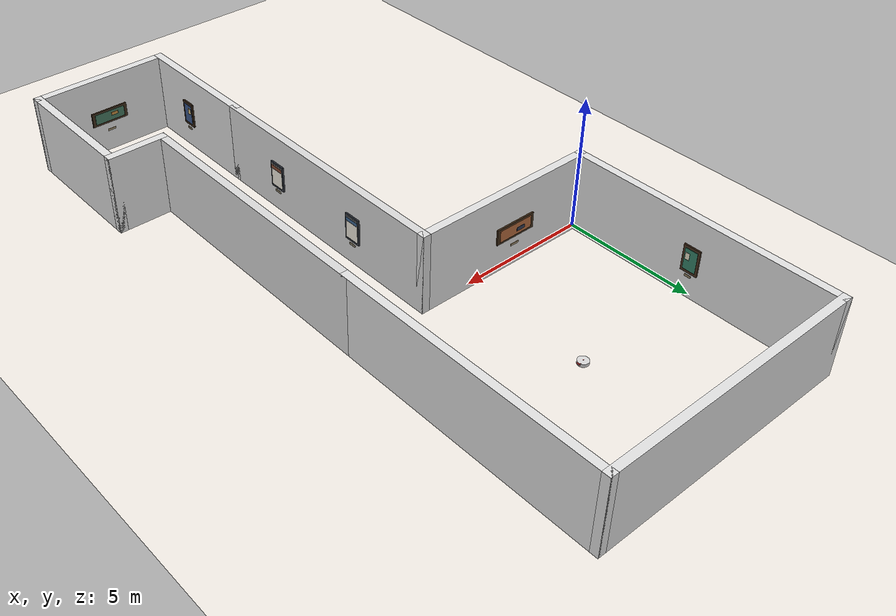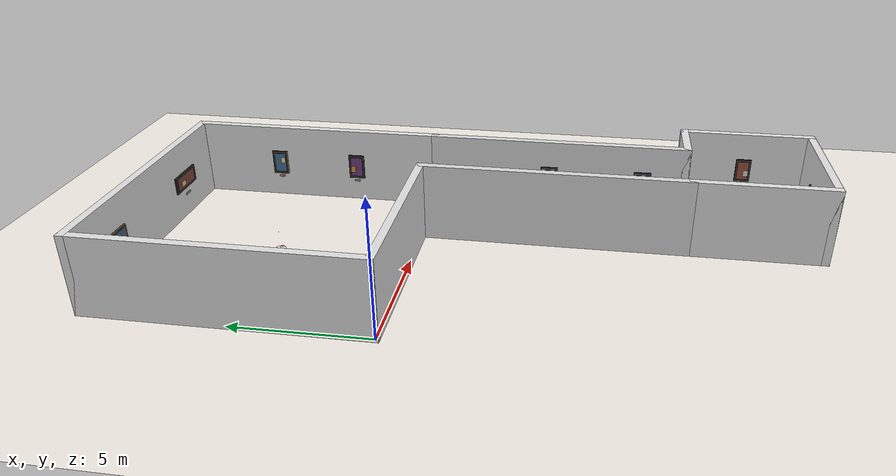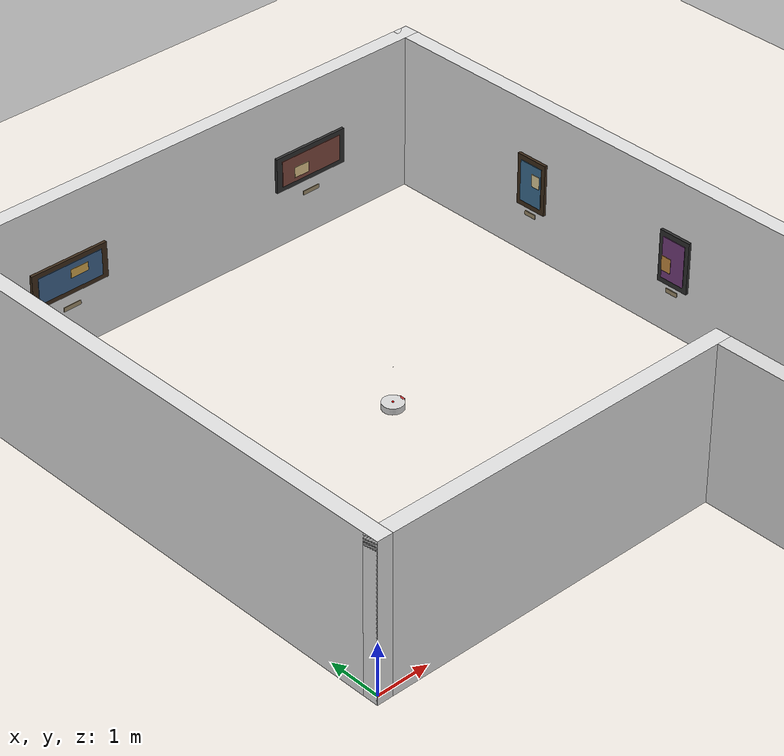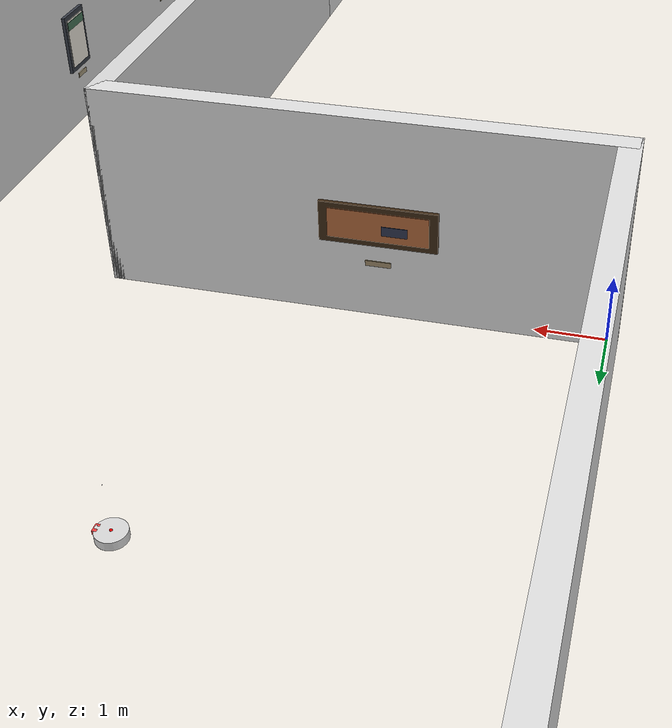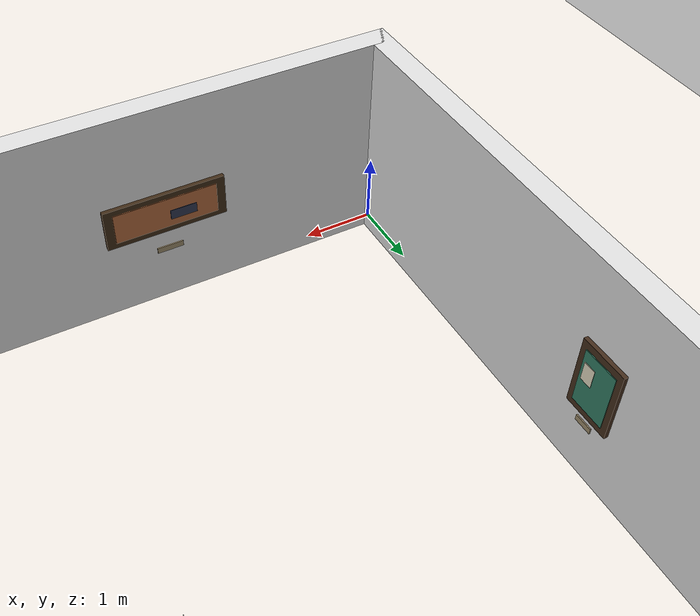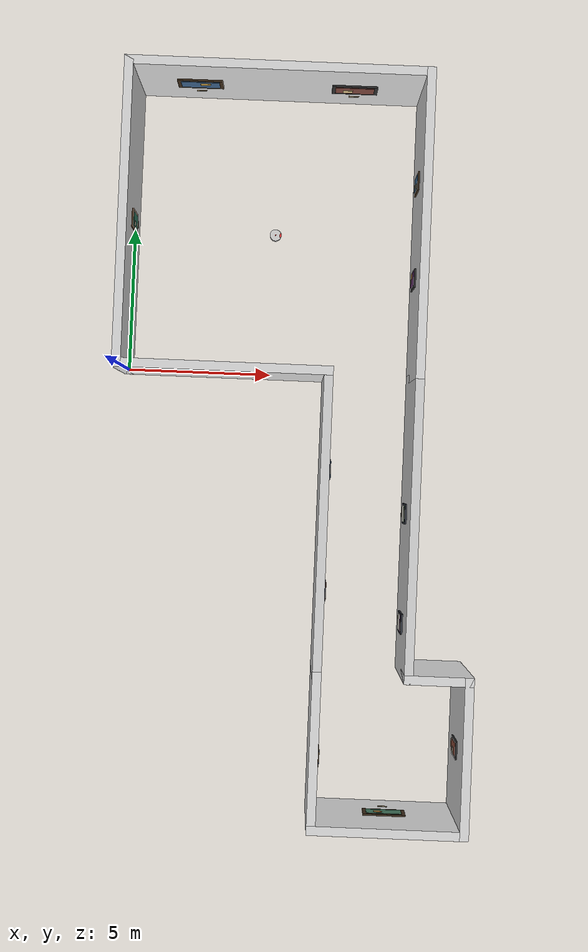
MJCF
<mujoco model="museum_shell">
      <compiler angle="degree" coordinate="local"/>
      <option timestep="0.01" gravity="0 0 0"/>

      <visual>
            <global offwidth="1920" offheight="1080"/>
            <quality offsamples="8"/>
      </visual>

      <default>
            <!-- Collision defaults (good stable starting point) -->
            <geom contype="1" conaffinity="1" friction="1 0.005 0.0001" solref="0.02 1" solimp="0.9 0.95 0.001"/>
      </default>

      <worldbody>
            <!-- A camera so you immediately see something -->
            <camera name="cam_overview" pos="6 -14 7" xyaxes="1 0 0 0 0.55 0.83"/>

            <!-- ============ FLOOR ============ -->
            <!-- size = half-size. This plane is effectively infinite visually;
         size mainly affects texture scaling; keep it large. -->
            <geom name="floor" type="plane" pos="0 0 0" size="30 30 0.1" rgba="0.95 0.93 0.9 1" contype="0" conaffinity="0"/>

            <!-- ============ CORRIDOR ============ -->
            <!-- CORRIDOR: inner x[7.0,10], y[-10,0] (width 3.0m, length 10m) -->
            <!-- Left corridor wall at x=7.0 -->

            <!-- Left wall of corridor -->
            <geom name="corridor_wall_left" type="box" pos="7.0 -5 1.5" size="0.15 5.15 1.5" rgba="0.85 0.85 0.85 1"/>

            <!-- Right corridor wall at x=10 -->
            <geom name="corridor_wall_right" type="box" pos="10 -5 1.5" size="0.15 5.15 1.5" rgba="0.85 0.85 0.85 1"/>

            <!-- ROOM A (10x10): x[0,10], y[0,10] -->
            <!-- Top wall y=10 -->
            <geom name="roomA_wall_top" type="box" pos="5 10 1.5" size="5.15 0.15 1.5" rgba="0.88 0.88 0.88 1"/>

            <!-- Left wall x=0 -->
            <geom name="roomA_wall_left" type="box" pos="0 5 1.5" size="0.15 5.15 1.5" rgba="0.88 0.88 0.88 1"/>

            <!-- Right wall x=10 -->
            <geom name="roomA_wall_right" type="box" pos="10 5 1.5" size="0.15 5.15 1.5" rgba="0.88 0.88 0.88 1"/>

            <!-- Bottom wall y=0, keep the right-side opening to the corridor -->
            <geom name="roomA_wall_bottom_left" type="box" pos="3.50 0 1.5" size="3.65 0.15 1.5" rgba="0.88 0.88 0.88 1"/>

            <!-- ROOM B: x[7.0,12], y[-15,-10] (5x5) -->
            <!-- Left wall x=7.0 -->
            <geom name="roomB_wall_left" type="box" pos="7.0 -12.5 1.5" size="0.15 2.65 1.5" rgba="0.88 0.88 0.88 1"/>

            <!-- Right wall x=12 -->
            <geom name="roomB_wall_right" type="box" pos="12 -12.5 1.5" size="0.15 2.65 1.5" rgba="0.88 0.88 0.88 1"/>

            <!-- Bottom wall y=-15 -->
            <geom name="roomB_wall_bottom" type="box" pos="9.50 -15 1.5" size="2.65 0.15 1.5" rgba="0.88 0.88 0.88 1"/>

            <!-- Top wall y=-10, keep the left-side opening to connect corridor -->
            <geom name="roomB_wall_top_right" type="box" pos="11 -10 1.5" size="1.15 0.15 1.5" rgba="0.88 0.88 0.88 1"/>

            <!-- ============ WALL EXHIBITIONS (visual only) ============ -->
            <!-- Room A framed paintings -->
            <geom name="exhibit_roomA_top_left_frame" type="box" pos="2.25 9.815 1.48" size="0.78 0.028 0.34" rgba="0.24 0.17 0.10 1" contype="0" conaffinity="0"/>
            <geom name="exhibit_roomA_top_left_canvas" type="box" pos="2.25 9.785 1.48" size="0.66 0.010 0.25" rgba="0.24 0.39 0.55 1" contype="0" conaffinity="0"/>
            <geom name="exhibit_roomA_top_left_detail" type="box" pos="2.43 9.772 1.54" size="0.18 0.006 0.08" rgba="0.84 0.67 0.31 1" contype="0" conaffinity="0"/>
            <geom name="exhibit_roomA_top_left_plaque" type="box" pos="2.25 9.790 0.90" size="0.18 0.008 0.04" rgba="0.62 0.55 0.42 1" contype="0" conaffinity="0"/>

            <geom name="exhibit_roomA_top_right_frame" type="box" pos="7.55 9.815 1.48" size="0.78 0.028 0.34" rgba="0.18 0.18 0.18 1" contype="0" conaffinity="0"/>
            <geom name="exhibit_roomA_top_right_canvas" type="box" pos="7.55 9.785 1.48" size="0.66 0.010 0.25" rgba="0.50 0.28 0.24 1" contype="0" conaffinity="0"/>
            <geom name="exhibit_roomA_top_right_detail" type="box" pos="7.32 9.772 1.41" size="0.16 0.006 0.10" rgba="0.90 0.79 0.56 1" contype="0" conaffinity="0"/>
            <geom name="exhibit_roomA_top_right_plaque" type="box" pos="7.55 9.790 0.90" size="0.18 0.008 0.04" rgba="0.62 0.55 0.42 1" contype="0" conaffinity="0"/>

            <geom name="exhibit_roomA_left_frame" type="box" pos="0.185 5.00 1.47" size="0.028 0.32 0.50" rgba="0.27 0.18 0.11 1" contype="0" conaffinity="0"/>
            <geom name="exhibit_roomA_left_canvas" type="box" pos="0.214 5.00 1.47" size="0.010 0.24 0.40" rgba="0.20 0.50 0.40 1" contype="0" conaffinity="0"/>
            <geom name="exhibit_roomA_left_detail" type="box" pos="0.226 4.88 1.58" size="0.006 0.08 0.13" rgba="0.90 0.87 0.77 1" contype="0" conaffinity="0"/>
            <geom name="exhibit_roomA_left_plaque" type="box" pos="0.208 5.00 0.86" size="0.008 0.12 0.04" rgba="0.62 0.55 0.42 1" contype="0" conaffinity="0"/>

            <geom name="exhibit_roomA_right_frame" type="box" pos="9.815 3.35 1.47" size="0.028 0.32 0.50" rgba="0.18 0.18 0.18 1" contype="0" conaffinity="0"/>
            <geom name="exhibit_roomA_right_canvas" type="box" pos="9.786 3.35 1.47" size="0.010 0.24 0.40" rgba="0.46 0.24 0.49 1" contype="0" conaffinity="0"/>
            <geom name="exhibit_roomA_right_detail" type="box" pos="9.774 3.49 1.36" size="0.006 0.10 0.14" rgba="0.79 0.56 0.26 1" contype="0" conaffinity="0"/>
            <geom name="exhibit_roomA_right_plaque" type="box" pos="9.792 3.35 0.86" size="0.008 0.12 0.04" rgba="0.62 0.55 0.42 1" contype="0" conaffinity="0"/>

            <geom name="exhibit_roomA_right_upper_frame" type="box" pos="9.815 6.65 1.47" size="0.028 0.32 0.50" rgba="0.24 0.17 0.10 1" contype="0" conaffinity="0"/>
            <geom name="exhibit_roomA_right_upper_canvas" type="box" pos="9.786 6.65 1.47" size="0.010 0.24 0.40" rgba="0.23 0.43 0.58 1" contype="0" conaffinity="0"/>
            <geom name="exhibit_roomA_right_upper_detail" type="box" pos="9.774 6.53 1.58" size="0.006 0.09 0.12" rgba="0.89 0.82 0.62 1" contype="0" conaffinity="0"/>
            <geom name="exhibit_roomA_right_upper_plaque" type="box" pos="9.792 6.65 0.86" size="0.008 0.12 0.04" rgba="0.62 0.55 0.42 1" contype="0" conaffinity="0"/>

            <geom name="exhibit_roomA_bottom_frame" type="box" pos="3.15 0.185 1.46" size="0.82 0.028 0.30" rgba="0.25 0.17 0.09 1" contype="0" conaffinity="0"/>
            <geom name="exhibit_roomA_bottom_canvas" type="box" pos="3.15 0.214 1.46" size="0.70 0.010 0.22" rgba="0.71 0.42 0.24 1" contype="0" conaffinity="0"/>
            <geom name="exhibit_roomA_bottom_detail" type="box" pos="2.92 0.226 1.42" size="0.18 0.006 0.07" rgba="0.19 0.22 0.32 1" contype="0" conaffinity="0"/>
            <geom name="exhibit_roomA_bottom_plaque" type="box" pos="3.15 0.208 0.88" size="0.18 0.008 0.04" rgba="0.62 0.55 0.42 1" contype="0" conaffinity="0"/>

            <!-- Corridor information panels -->
            <geom name="exhibit_corridor_left_upper_frame" type="box" pos="7.185 -3.25 1.46" size="0.028 0.34 0.50" rgba="0.22 0.24 0.28 1" contype="0" conaffinity="0"/>
            <geom name="exhibit_corridor_left_upper_panel" type="box" pos="7.214 -3.25 1.46" size="0.010 0.28 0.42" rgba="0.94 0.92 0.88 1" contype="0" conaffinity="0"/>
            <geom name="exhibit_corridor_left_upper_title" type="box" pos="7.226 -3.25 1.78" size="0.006 0.28 0.07" rgba="0.24 0.40 0.57 1" contype="0" conaffinity="0"/>
            <geom name="exhibit_corridor_left_upper_plaque" type="box" pos="7.208 -3.25 0.84" size="0.008 0.14 0.04" rgba="0.66 0.61 0.50 1" contype="0" conaffinity="0"/>

            <geom name="exhibit_corridor_left_lower_frame" type="box" pos="7.185 -7.35 1.46" size="0.028 0.34 0.50" rgba="0.22 0.24 0.28 1" contype="0" conaffinity="0"/>
            <geom name="exhibit_corridor_left_lower_panel" type="box" pos="7.214 -7.35 1.46" size="0.010 0.28 0.42" rgba="0.94 0.92 0.88 1" contype="0" conaffinity="0"/>
            <geom name="exhibit_corridor_left_lower_title" type="box" pos="7.226 -7.35 1.78" size="0.006 0.28 0.07" rgba="0.53 0.30 0.21 1" contype="0" conaffinity="0"/>
            <geom name="exhibit_corridor_left_lower_plaque" type="box" pos="7.208 -7.35 0.84" size="0.008 0.14 0.04" rgba="0.66 0.61 0.50 1" contype="0" conaffinity="0"/>

            <geom name="exhibit_corridor_right_upper_frame" type="box" pos="9.815 -4.65 1.46" size="0.028 0.34 0.50" rgba="0.22 0.24 0.28 1" contype="0" conaffinity="0"/>
            <geom name="exhibit_corridor_right_upper_panel" type="box" pos="9.786 -4.65 1.46" size="0.010 0.28 0.42" rgba="0.94 0.92 0.88 1" contype="0" conaffinity="0"/>
            <geom name="exhibit_corridor_right_upper_title" type="box" pos="9.774 -4.65 1.78" size="0.006 0.28 0.07" rgba="0.28 0.46 0.35 1" contype="0" conaffinity="0"/>
            <geom name="exhibit_corridor_right_upper_plaque" type="box" pos="9.792 -4.65 0.84" size="0.008 0.14 0.04" rgba="0.66 0.61 0.50 1" contype="0" conaffinity="0"/>

            <geom name="exhibit_corridor_right_lower_frame" type="box" pos="9.815 -8.35 1.46" size="0.028 0.34 0.50" rgba="0.22 0.24 0.28 1" contype="0" conaffinity="0"/>
            <geom name="exhibit_corridor_right_lower_panel" type="box" pos="9.786 -8.35 1.46" size="0.010 0.28 0.42" rgba="0.94 0.92 0.88 1" contype="0" conaffinity="0"/>
            <geom name="exhibit_corridor_right_lower_title" type="box" pos="9.774 -8.35 1.78" size="0.006 0.28 0.07" rgba="0.45 0.25 0.50 1" contype="0" conaffinity="0"/>
            <geom name="exhibit_corridor_right_lower_plaque" type="box" pos="9.792 -8.35 0.84" size="0.008 0.14 0.04" rgba="0.66 0.61 0.50 1" contype="0" conaffinity="0"/>

            <!-- Room B framed paintings -->
            <geom name="exhibit_roomB_left_frame" type="box" pos="7.185 -12.95 1.46" size="0.028 0.30 0.48" rgba="0.25 0.17 0.10 1" contype="0" conaffinity="0"/>
            <geom name="exhibit_roomB_left_canvas" type="box" pos="7.214 -12.95 1.46" size="0.010 0.22 0.38" rgba="0.23 0.34 0.54 1" contype="0" conaffinity="0"/>
            <geom name="exhibit_roomB_left_detail" type="box" pos="7.226 -12.84 1.60" size="0.006 0.08 0.11" rgba="0.90 0.79 0.53 1" contype="0" conaffinity="0"/>
            <geom name="exhibit_roomB_left_plaque" type="box" pos="7.208 -12.95 0.84" size="0.008 0.12 0.04" rgba="0.62 0.55 0.42 1" contype="0" conaffinity="0"/>

            <geom name="exhibit_roomB_right_frame" type="box" pos="11.815 -12.50 1.46" size="0.028 0.30 0.48" rgba="0.18 0.18 0.18 1" contype="0" conaffinity="0"/>
            <geom name="exhibit_roomB_right_canvas" type="box" pos="11.786 -12.50 1.46" size="0.010 0.22 0.38" rgba="0.58 0.31 0.23 1" contype="0" conaffinity="0"/>
            <geom name="exhibit_roomB_right_detail" type="box" pos="11.774 -12.62 1.34" size="0.006 0.10 0.13" rgba="0.86 0.84 0.74 1" contype="0" conaffinity="0"/>
            <geom name="exhibit_roomB_right_plaque" type="box" pos="11.792 -12.50 0.84" size="0.008 0.12 0.04" rgba="0.62 0.55 0.42 1" contype="0" conaffinity="0"/>

            <geom name="exhibit_roomB_bottom_frame" type="box" pos="9.50 -14.815 1.45" size="0.72 0.028 0.28" rgba="0.24 0.17 0.10 1" contype="0" conaffinity="0"/>
            <geom name="exhibit_roomB_bottom_canvas" type="box" pos="9.50 -14.786 1.45" size="0.60 0.010 0.20" rgba="0.27 0.47 0.37 1" contype="0" conaffinity="0"/>
            <geom name="exhibit_roomB_bottom_detail" type="box" pos="9.30 -14.774 1.49" size="0.14 0.006 0.06" rgba="0.77 0.55 0.25 1" contype="0" conaffinity="0"/>
            <geom name="exhibit_roomB_bottom_plaque" type="box" pos="9.50 -14.792 0.87" size="0.16 0.008 0.04" rgba="0.62 0.55 0.42 1" contype="0" conaffinity="0"/>

            <!-- ============ DISPLAY CASES ============ -->
            <!-- Cases: 0.6x0.6 and 0.6x1.2 (meters). We'll make them 0.9m tall. -->
            <!-- Box size is half-size: (0.3, 0.3, 0.45) for 0.6x0.6x0.9 -->
            <!-- and (0.3, 0.6, 0.45) for 0.6x1.2x0.9 -->

            <!-- ============ ROBOT (triangle-ish base, planar joints) ============ -->
            <body name="robot" pos="5 5 0.06">
                  <!-- Planar movement: x, y, yaw -->
                  <joint name="robot_x" type="slide" axis="1 0 0" damping="10"/>
                  <joint name="robot_y" type="slide" axis="0 1 0" damping="10"/>
                  <joint name="robot_yaw" type="hinge" axis="0 0 1" damping="1"/>

                  <!-- Main footprint: use a cylinder for stable collision (fast + robust).
           Radius ~0.20m (40cm diameter). Height 0.12m. -->
                  <geom name="robot_base" type="cylinder" size="0.20 0.06" mass="20" friction="0.2 0.01 0.001" rgba="0.85 0.85 0.85 1"/>

                  <!-- Nose: small box in front to show orientation (front/back) -->
                  <geom name="robot_nose" type="box" pos="0.18 0 0.03" size="0.03 0.06 0.03" rgba="0.95 0.25 0.25 1" contype="0" conaffinity="0"/>

                  <!-- Visual-only speaking halo (shown via env control when robot is speaking). -->
                  <geom name="robot_speaking_halo" type="cylinder" pos="0 0 -0.055" size="0.34 0.004" rgba="1.0 0.9 0.2 0.0" contype="0" conaffinity="0"/>

                  <!-- Optional: a site for easy tracking (goal distances, etc.) -->
                  <site name="robot_site" pos="0 0 0.06" size="0.02" rgba="1 0 0 1"/>

                  <!-- Speaking text label site (shown via mjLABEL_SITE when speaker is active). -->
                  <site name="explanation" pos="0 0 0.72" size="0.005" rgba="1 1 1 1" group="3"/>

                  <!-- Question-answer label site (shown while robot answers a question). -->
                  <site name="answer question" pos="0 0 0.75" size="0.005" rgba="1 1 1 1" group="1"/>

                  <!-- Callback label site (shown while robot asks a lagging human to rejoin). -->
                  <site name="please rejoin" pos="0 0 0.78" size="0.005" rgba="1 1 1 1" group="4"/>

                  <!-- Courtesy pass-request label site (shown when someone blocks the robot ahead). -->
                  <site name="Please let me pass." pos="0 0 0.84" size="0.005" rgba="1 1 1 1" group="5"/>
            </body>

            <!-- ============ PERSON (oval torso + head + nose, planar joints) ============ -->
            <body name="person1" pos="0 0 0.125">
                  <!-- Planar movement: x, y, yaw -->
                  <joint name="person1_x" type="slide" axis="1 0 0" damping="80" frictionloss="10"/>
                  <joint name="person1_y" type="slide" axis="0 1 0" damping="80" frictionloss="10"/>
                  <joint name="person1_yaw" type="hinge" axis="0 0 1" damping="0.5"/>

                  <geom name="person1_torso" type="capsule" pos="0 0 0.125" size="0.125 0.10" mass="60" euler="0 0 90" rgba="0.25 0.75 0.35 1"/>

                  <!-- Head -->
                  <geom name="person1_head" type="sphere" pos="0 0 0.36" size="0.09" rgba="0.95 0.85 0.75 1" contype="0" conaffinity="0"/>

                  <!-- Nose: small marker to show front direction (person faces +y in its local frame) -->
                  <geom name="person1_nose" type="box" pos="0.18 0 0.36" size="0.02 0.03 0.02" rgba="0.95 0.35 0.35 1" contype="0" conaffinity="0"/>
                  <geom name="person1_speaking_halo" type="cylinder" pos="0 0 -0.115" size="0.32 0.004" rgba="1.0 0.9 0.2 0.0" contype="0" conaffinity="0"/>

                  <!-- Tracking site -->
                  <site name="person1_site" pos="0 0 0.125" size="0.02" rgba="0 1 0 1"/>
                  <site name="p1" pos="0 0 0.52" size="0.005" rgba="1 1 1 1" group="2"/>
            </body>

            <!-- More people -->
            <body name="person2" pos="0 0 0.125">
                  <joint name="person2_x" type="slide" axis="1 0 0" damping="80" frictionloss="10"/>
                  <joint name="person2_y" type="slide" axis="0 1 0" damping="80" frictionloss="10"/>
                  <joint name="person2_yaw" type="hinge" axis="0 0 1" damping="0.5"/>
                  <geom name="person2_torso" type="capsule" pos="0 0 0.125" size="0.125 0.10" mass="60" euler="0 0 90" rgba="0.20 0.70 0.30 1"/>
                  <geom name="person2_head" type="sphere" pos="0 0 0.36" size="0.09" rgba="0.95 0.85 0.75 1" contype="0" conaffinity="0"/>
                  <geom name="person2_nose" type="box" pos="0.18 0 0.36" size="0.02 0.03 0.02" rgba="0.95 0.35 0.35 1" contype="0" conaffinity="0"/>
                  <geom name="person2_speaking_halo" type="cylinder" pos="0 0 -0.115" size="0.32 0.004" rgba="1.0 0.9 0.2 0.0" contype="0" conaffinity="0"/>
                  <site name="person2_site" pos="0 0 0.125" size="0.02" rgba="0 1 0 1"/>
                  <site name="p2" pos="0 0 0.52" size="0.005" rgba="1 1 1 1" group="2"/>
            </body>

            <body name="person3" pos="0 0 0.125">
                  <joint name="person3_x" type="slide" axis="1 0 0" damping="80" frictionloss="10"/>
                  <joint name="person3_y" type="slide" axis="0 1 0" damping="80" frictionloss="10"/>
                  <joint name="person3_yaw" type="hinge" axis="0 0 1" damping="0.5"/>
                  <geom name="person3_torso" type="capsule" pos="0 0 0.125" size="0.125 0.10" mass="60" euler="0 0 90" rgba="0.22 0.72 0.33 1"/>
                  <geom name="person3_head" type="sphere" pos="0 0 0.36" size="0.09" rgba="0.95 0.85 0.75 1" contype="0" conaffinity="0"/>
                  <geom name="person3_nose" type="box" pos="0.18 0 0.36" size="0.02 0.03 0.02" rgba="0.95 0.35 0.35 1" contype="0" conaffinity="0"/>
                  <geom name="person3_speaking_halo" type="cylinder" pos="0 0 -0.115" size="0.32 0.004" rgba="1.0 0.9 0.2 0.0" contype="0" conaffinity="0"/>
                  <site name="person3_site" pos="0 0 0.125" size="0.02" rgba="0 1 0 1"/>
                  <site name="p3" pos="0 0 0.52" size="0.005" rgba="1 1 1 1" group="2"/>
            </body>

            <body name="person4" pos="0 0 0.125">
                  <joint name="person4_x" type="slide" axis="1 0 0" damping="80" frictionloss="10"/>
                  <joint name="person4_y" type="slide" axis="0 1 0" damping="80" frictionloss="10"/>
                  <joint name="person4_yaw" type="hinge" axis="0 0 1" damping="0.5"/>
                  <geom name="person4_torso" type="capsule" pos="0 0 0.125" size="0.125 0.10" mass="60" euler="0 0 90" rgba="0.24 0.74 0.35 1"/>
                  <geom name="person4_head" type="sphere" pos="0 0 0.36" size="0.09" rgba="0.95 0.85 0.75 1" contype="0" conaffinity="0"/>
                  <geom name="person4_nose" type="box" pos="0.18 0 0.36" size="0.02 0.03 0.02" rgba="0.95 0.35 0.35 1" contype="0" conaffinity="0"/>
                  <geom name="person4_speaking_halo" type="cylinder" pos="0 0 -0.115" size="0.32 0.004" rgba="1.0 0.9 0.2 0.0" contype="0" conaffinity="0"/>
                  <site name="person4_site" pos="0 0 0.125" size="0.02" rgba="0 1 0 1"/>
                  <site name="p4" pos="0 0 0.52" size="0.005" rgba="1 1 1 1" group="2"/>
            </body>

            <body name="person5" pos="0 0 0.125">
                  <joint name="person5_x" type="slide" axis="1 0 0" damping="80" frictionloss="10"/>
                  <joint name="person5_y" type="slide" axis="0 1 0" damping="80" frictionloss="10"/>
                  <joint name="person5_yaw" type="hinge" axis="0 0 1" damping="0.5"/>
                  <geom name="person5_torso" type="capsule" pos="0 0 0.125" size="0.125 0.10" mass="60" euler="0 0 90" rgba="0.26 0.76 0.37 1"/>
                  <geom name="person5_head" type="sphere" pos="0 0 0.36" size="0.09" rgba="0.95 0.85 0.75 1" contype="0" conaffinity="0"/>
                  <geom name="person5_nose" type="box" pos="0.18 0 0.36" size="0.02 0.03 0.02" rgba="0.95 0.35 0.35 1" contype="0" conaffinity="0"/>
                  <geom name="person5_speaking_halo" type="cylinder" pos="0 0 -0.115" size="0.32 0.004" rgba="1.0 0.9 0.2 0.0" contype="0" conaffinity="0"/>
                  <site name="person5_site" pos="0 0 0.125" size="0.02" rgba="0 1 0 1"/>
                  <site name="p5" pos="0 0 0.52" size="0.005" rgba="1 1 1 1" group="2"/>
            </body>

            <body name="person6" pos="0 0 0.125">
                  <joint name="person6_x" type="slide" axis="1 0 0" damping="80" frictionloss="10"/>
                  <joint name="person6_y" type="slide" axis="0 1 0" damping="80" frictionloss="10"/>
                  <joint name="person6_yaw" type="hinge" axis="0 0 1" damping="0.5"/>
                  <geom name="person6_torso" type="capsule" pos="0 0 0.125" size="0.125 0.10" mass="60" euler="0 0 90" rgba="0.28 0.78 0.39 1"/>
                  <geom name="person6_head" type="sphere" pos="0 0 0.36" size="0.09" rgba="0.95 0.85 0.75 1" contype="0" conaffinity="0"/>
                  <geom name="person6_nose" type="box" pos="0.18 0 0.36" size="0.02 0.03 0.02" rgba="0.95 0.35 0.35 1" contype="0" conaffinity="0"/>
                  <geom name="person6_speaking_halo" type="cylinder" pos="0 0 -0.115" size="0.32 0.004" rgba="1.0 0.9 0.2 0.0" contype="0" conaffinity="0"/>
                  <site name="person6_site" pos="0 0 0.125" size="0.02" rgba="0 1 0 1"/>
                  <site name="p6" pos="0 0 0.52" size="0.005" rgba="1 1 1 1" group="2"/>
            </body>

            <body name="person7" pos="0 0 0.125">
                  <joint name="person7_x" type="slide" axis="1 0 0" damping="80" frictionloss="10"/>
                  <joint name="person7_y" type="slide" axis="0 1 0" damping="80" frictionloss="10"/>
                  <joint name="person7_yaw" type="hinge" axis="0 0 1" damping="0.5"/>
                  <geom name="person7_torso" type="capsule" pos="0 0 0.125" size="0.125 0.10" mass="60" euler="0 0 90" rgba="0.30 0.80 0.41 1"/>
                  <geom name="person7_head" type="sphere" pos="0 0 0.36" size="0.09" rgba="0.95 0.85 0.75 1" contype="0" conaffinity="0"/>
                  <geom name="person7_nose" type="box" pos="0.18 0 0.36" size="0.02 0.03 0.02" rgba="0.95 0.35 0.35 1" contype="0" conaffinity="0"/>
                  <geom name="person7_speaking_halo" type="cylinder" pos="0 0 -0.115" size="0.32 0.004" rgba="1.0 0.9 0.2 0.0" contype="0" conaffinity="0"/>
                  <site name="person7_site" pos="0 0 0.125" size="0.02" rgba="0 1 0 1"/>
                  <site name="p7" pos="0 0 0.52" size="0.005" rgba="1 1 1 1" group="2"/>
            </body>

            <body name="person8" pos="0 0 0.125">
                  <joint name="person8_x" type="slide" axis="1 0 0" damping="80" frictionloss="10"/>
                  <joint name="person8_y" type="slide" axis="0 1 0" damping="80" frictionloss="10"/>
                  <joint name="person8_yaw" type="hinge" axis="0 0 1" damping="0.5"/>
                  <geom name="person8_torso" type="capsule" pos="0 0 0.125" size="0.125 0.10" mass="60" euler="0 0 90" rgba="0.32 0.82 0.43 1"/>
                  <geom name="person8_head" type="sphere" pos="0 0 0.36" size="0.09" rgba="0.95 0.85 0.75 1" contype="0" conaffinity="0"/>
                  <geom name="person8_nose" type="box" pos="0.18 0 0.36" size="0.02 0.03 0.02" rgba="0.95 0.35 0.35 1" contype="0" conaffinity="0"/>
                  <geom name="person8_speaking_halo" type="cylinder" pos="0 0 -0.115" size="0.32 0.004" rgba="1.0 0.9 0.2 0.0" contype="0" conaffinity="0"/>
                  <site name="person8_site" pos="0 0 0.125" size="0.02" rgba="0 1 0 1"/>
                  <site name="p8" pos="0 0 0.52" size="0.005" rgba="1 1 1 1" group="2"/>
            </body>

            <body name="person9" pos="0 0 0.125">
                  <joint name="person9_x" type="slide" axis="1 0 0" damping="80" frictionloss="10"/>
                  <joint name="person9_y" type="slide" axis="0 1 0" damping="80" frictionloss="10"/>
                  <joint name="person9_yaw" type="hinge" axis="0 0 1" damping="0.5"/>
                  <geom name="person9_torso" type="capsule" pos="0 0 0.125" size="0.125 0.10" mass="60" euler="0 0 90" rgba="0.34 0.84 0.45 1"/>
                  <geom name="person9_head" type="sphere" pos="0 0 0.36" size="0.09" rgba="0.95 0.85 0.75 1" contype="0" conaffinity="0"/>
                  <geom name="person9_nose" type="box" pos="0.18 0 0.36" size="0.02 0.03 0.02" rgba="0.95 0.35 0.35 1" contype="0" conaffinity="0"/>
                  <geom name="person9_speaking_halo" type="cylinder" pos="0 0 -0.115" size="0.32 0.004" rgba="1.0 0.9 0.2 0.0" contype="0" conaffinity="0"/>
                  <site name="person9_site" pos="0 0 0.125" size="0.02" rgba="0 1 0 1"/>
                  <site name="p9" pos="0 0 0.52" size="0.005" rgba="1 1 1 1" group="2"/>
            </body>

            <body name="person10" pos="0 0 0.125">
                  <joint name="person10_x" type="slide" axis="1 0 0" damping="80" frictionloss="10"/>
                  <joint name="person10_y" type="slide" axis="0 1 0" damping="80" frictionloss="10"/>
                  <joint name="person10_yaw" type="hinge" axis="0 0 1" damping="0.5"/>
                  <geom name="person10_torso" type="capsule" pos="0 0 0.125" size="0.125 0.10" mass="60" euler="0 0 90" rgba="0.36 0.86 0.47 1"/>
                  <geom name="person10_head" type="sphere" pos="0 0 0.36" size="0.09" rgba="0.95 0.85 0.75 1" contype="0" conaffinity="0"/>
                  <geom name="person10_nose" type="box" pos="0.18 0 0.36" size="0.02 0.03 0.02" rgba="0.95 0.35 0.35 1" contype="0" conaffinity="0"/>
                  <geom name="person10_speaking_halo" type="cylinder" pos="0 0 -0.115" size="0.32 0.004" rgba="1.0 0.9 0.2 0.0" contype="0" conaffinity="0"/>
                  <site name="person10_site" pos="0 0 0.125" size="0.02" rgba="0 1 0 1"/>
                  <site name="p10" pos="0 0 0.52" size="0.005" rgba="1 1 1 1" group="2"/>
            </body>

            <body name="person11" pos="0 0 0.125">
                  <joint name="person11_x" type="slide" axis="1 0 0" damping="80" frictionloss="10"/>
                  <joint name="person11_y" type="slide" axis="0 1 0" damping="80" frictionloss="10"/>
                  <joint name="person11_yaw" type="hinge" axis="0 0 1" damping="0.5"/>
                  <geom name="person11_torso" type="capsule" pos="0 0 0.125" size="0.125 0.10" mass="60" euler="0 0 90" rgba="0.38 0.88 0.49 1"/>
                  <geom name="person11_head" type="sphere" pos="0 0 0.36" size="0.09" rgba="0.95 0.85 0.75 1" contype="0" conaffinity="0"/>
                  <geom name="person11_nose" type="box" pos="0.18 0 0.36" size="0.02 0.03 0.02" rgba="0.95 0.35 0.35 1" contype="0" conaffinity="0"/>
                  <geom name="person11_speaking_halo" type="cylinder" pos="0 0 -0.115" size="0.32 0.004" rgba="1.0 0.9 0.2 0.0" contype="0" conaffinity="0"/>
                  <site name="person11_site" pos="0 0 0.125" size="0.02" rgba="0 1 0 1"/>
                  <site name="p11" pos="0 0 0.52" size="0.005" rgba="1 1 1 1" group="2"/>
            </body>

            <body name="person12" pos="0 0 0.125">
                  <joint name="person12_x" type="slide" axis="1 0 0" damping="80" frictionloss="10"/>
                  <joint name="person12_y" type="slide" axis="0 1 0" damping="80" frictionloss="10"/>
                  <joint name="person12_yaw" type="hinge" axis="0 0 1" damping="0.5"/>
                  <geom name="person12_torso" type="capsule" pos="0 0 0.125" size="0.125 0.10" mass="60" euler="0 0 90" rgba="0.40 0.90 0.51 1"/>
                  <geom name="person12_head" type="sphere" pos="0 0 0.36" size="0.09" rgba="0.95 0.85 0.75 1" contype="0" conaffinity="0"/>
                  <geom name="person12_nose" type="box" pos="0.18 0 0.36" size="0.02 0.03 0.02" rgba="0.95 0.35 0.35 1" contype="0" conaffinity="0"/>
                  <geom name="person12_speaking_halo" type="cylinder" pos="0 0 -0.115" size="0.32 0.004" rgba="1.0 0.9 0.2 0.0" contype="0" conaffinity="0"/>
                  <site name="person12_site" pos="0 0 0.125" size="0.02" rgba="0 1 0 1"/>
                  <site name="p12" pos="0 0 0.52" size="0.005" rgba="1 1 1 1" group="2"/>
            </body>

            <body name="person13" pos="0 0 0.125">
                  <joint name="person13_x" type="slide" axis="1 0 0" damping="80" frictionloss="10"/>
                  <joint name="person13_y" type="slide" axis="0 1 0" damping="80" frictionloss="10"/>
                  <joint name="person13_yaw" type="hinge" axis="0 0 1" damping="0.5"/>
                  <geom name="person13_torso" type="capsule" pos="0 0 0.125" size="0.125 0.10" mass="60" euler="0 0 90" rgba="0.42 0.92 0.53 1"/>
                  <geom name="person13_head" type="sphere" pos="0 0 0.36" size="0.09" rgba="0.95 0.85 0.75 1" contype="0" conaffinity="0"/>
                  <geom name="person13_nose" type="box" pos="0.18 0 0.36" size="0.02 0.03 0.02" rgba="0.95 0.35 0.35 1" contype="0" conaffinity="0"/>
                  <geom name="person13_speaking_halo" type="cylinder" pos="0 0 -0.115" size="0.32 0.004" rgba="1.0 0.9 0.2 0.0" contype="0" conaffinity="0"/>
                  <site name="person13_site" pos="0 0 0.125" size="0.02" rgba="0 1 0 1"/>
                  <site name="p13" pos="0 0 0.52" size="0.005" rgba="1 1 1 1" group="2"/>
            </body>

            <body name="person14" pos="0 0 0.125">
                  <joint name="person14_x" type="slide" axis="1 0 0" damping="80" frictionloss="10"/>
                  <joint name="person14_y" type="slide" axis="0 1 0" damping="80" frictionloss="10"/>
                  <joint name="person14_yaw" type="hinge" axis="0 0 1" damping="0.5"/>
                  <geom name="person14_torso" type="capsule" pos="0 0 0.125" size="0.125 0.10" mass="60" euler="0 0 90" rgba="0.44 0.94 0.55 1"/>
                  <geom name="person14_head" type="sphere" pos="0 0 0.36" size="0.09" rgba="0.95 0.85 0.75 1" contype="0" conaffinity="0"/>
                  <geom name="person14_nose" type="box" pos="0.18 0 0.36" size="0.02 0.03 0.02" rgba="0.95 0.35 0.35 1" contype="0" conaffinity="0"/>
                  <geom name="person14_speaking_halo" type="cylinder" pos="0 0 -0.115" size="0.32 0.004" rgba="1.0 0.9 0.2 0.0" contype="0" conaffinity="0"/>
                  <site name="person14_site" pos="0 0 0.125" size="0.02" rgba="0 1 0 1"/>
                  <site name="p14" pos="0 0 0.52" size="0.005" rgba="1 1 1 1" group="2"/>
            </body>

            <body name="person15" pos="0 0 0.125">
                  <joint name="person15_x" type="slide" axis="1 0 0" damping="80" frictionloss="10"/>
                  <joint name="person15_y" type="slide" axis="0 1 0" damping="80" frictionloss="10"/>
                  <joint name="person15_yaw" type="hinge" axis="0 0 1" damping="0.5"/>
                  <geom name="person15_torso" type="capsule" pos="0 0 0.125" size="0.125 0.10" mass="60" euler="0 0 90" rgba="0.46 0.96 0.57 1"/>
                  <geom name="person15_head" type="sphere" pos="0 0 0.36" size="0.09" rgba="0.95 0.85 0.75 1" contype="0" conaffinity="0"/>
                  <geom name="person15_nose" type="box" pos="0.18 0 0.36" size="0.02 0.03 0.02" rgba="0.95 0.35 0.35 1" contype="0" conaffinity="0"/>
                  <geom name="person15_speaking_halo" type="cylinder" pos="0 0 -0.115" size="0.32 0.004" rgba="1.0 0.9 0.2 0.0" contype="0" conaffinity="0"/>
                  <site name="person15_site" pos="0 0 0.125" size="0.02" rgba="0 1 0 1"/>
                  <site name="p15" pos="0 0 0.52" size="0.005" rgba="1 1 1 1" group="2"/>
            </body>

      </worldbody>

      <actuator>
            <!-- Control x/y slides and yaw hinge.
            For RL, action = [vx_cmd, vy_cmd, yawrate_cmd] is possible.
            But for (v, w) you usually set vy_cmd=0 in your policy. -->
            <velocity name="motor_x" joint="robot_x" kv="100" ctrlrange="-1.5 1.5"/>
            <velocity name="motor_y" joint="robot_y" kv="100" ctrlrange="-1.5 1.5"/>
            <velocity name="motor_yaw" joint="robot_yaw" kv="100" ctrlrange="-10.0 10.0"/>

            <!-- Person controls (change from motor to velocity) -->
            <velocity name="person1_motor_x" joint="person1_x" kv="100" ctrlrange="-1.67 1.67"/>
            <velocity name="person1_motor_y" joint="person1_y" kv="100" ctrlrange="-1.67 1.67"/>
            <velocity name="person1_motor_yaw" joint="person1_yaw" kv="100" ctrlrange="-20.0 20.0"/>

            <!-- Person2 controls -->
            <velocity name="person2_motor_x" joint="person2_x" kv="100" ctrlrange="-1.67 1.67"/>
            <velocity name="person2_motor_y" joint="person2_y" kv="100" ctrlrange="-1.67 1.67"/>
            <velocity name="person2_motor_yaw" joint="person2_yaw" kv="100" ctrlrange="-20.0 20.0"/>

            <!-- Person3 controls -->
            <velocity name="person3_motor_x" joint="person3_x" kv="100" ctrlrange="-1.67 1.67"/>
            <velocity name="person3_motor_y" joint="person3_y" kv="100" ctrlrange="-1.67 1.67"/>
            <velocity name="person3_motor_yaw" joint="person3_yaw" kv="100" ctrlrange="-20.0 20.0"/>

            <!-- Person4 controls -->
            <velocity name="person4_motor_x" joint="person4_x" kv="100" ctrlrange="-1.67 1.67"/>
            <velocity name="person4_motor_y" joint="person4_y" kv="100" ctrlrange="-1.67 1.67"/>
            <velocity name="person4_motor_yaw" joint="person4_yaw" kv="100" ctrlrange="-20.0 20.0"/>

            <!-- Person5 controls -->
            <velocity name="person5_motor_x" joint="person5_x" kv="100" ctrlrange="-1.67 1.67"/>
            <velocity name="person5_motor_y" joint="person5_y" kv="100" ctrlrange="-1.67 1.67"/>
            <velocity name="person5_motor_yaw" joint="person5_yaw" kv="100" ctrlrange="-20.0 20.0"/>

            <!-- Person6 controls -->
            <velocity name="person6_motor_x" joint="person6_x" kv="100" ctrlrange="-1.67 1.67"/>
            <velocity name="person6_motor_y" joint="person6_y" kv="100" ctrlrange="-1.67 1.67"/>
            <velocity name="person6_motor_yaw" joint="person6_yaw" kv="100" ctrlrange="-20.0 20.0"/>

            <!-- Person7 controls -->
            <velocity name="person7_motor_x" joint="person7_x" kv="100" ctrlrange="-1.67 1.67"/>
            <velocity name="person7_motor_y" joint="person7_y" kv="100" ctrlrange="-1.67 1.67"/>
            <velocity name="person7_motor_yaw" joint="person7_yaw" kv="100" ctrlrange="-20.0 20.0"/>

            <!-- Person8 controls -->
            <velocity name="person8_motor_x" joint="person8_x" kv="100" ctrlrange="-1.67 1.67"/>
            <velocity name="person8_motor_y" joint="person8_y" kv="100" ctrlrange="-1.67 1.67"/>
            <velocity name="person8_motor_yaw" joint="person8_yaw" kv="100" ctrlrange="-20.0 20.0"/>

            <!-- Person9 controls -->
            <velocity name="person9_motor_x" joint="person9_x" kv="100" ctrlrange="-1.67 1.67"/>
            <velocity name="person9_motor_y" joint="person9_y" kv="100" ctrlrange="-1.67 1.67"/>
            <velocity name="person9_motor_yaw" joint="person9_yaw" kv="100" ctrlrange="-20.0 20.0"/>

            <!-- Person10 controls -->
            <velocity name="person10_motor_x" joint="person10_x" kv="100" ctrlrange="-1.67 1.67"/>
            <velocity name="person10_motor_y" joint="person10_y" kv="100" ctrlrange="-1.67 1.67"/>
            <velocity name="person10_motor_yaw" joint="person10_yaw" kv="100" ctrlrange="-20.0 20.0"/>

            <!-- Person11 controls -->
            <velocity name="person11_motor_x" joint="person11_x" kv="100" ctrlrange="-1.67 1.67"/>
            <velocity name="person11_motor_y" joint="person11_y" kv="100" ctrlrange="-1.67 1.67"/>
            <velocity name="person11_motor_yaw" joint="person11_yaw" kv="100" ctrlrange="-20.0 20.0"/>

            <!-- Person12 controls -->
            <velocity name="person12_motor_x" joint="person12_x" kv="100" ctrlrange="-1.67 1.67"/>
            <velocity name="person12_motor_y" joint="person12_y" kv="100" ctrlrange="-1.67 1.67"/>
            <velocity name="person12_motor_yaw" joint="person12_yaw" kv="100" ctrlrange="-20.0 20.0"/>

            <!-- Person13 controls -->
            <velocity name="person13_motor_x" joint="person13_x" kv="100" ctrlrange="-1.67 1.67"/>
            <velocity name="person13_motor_y" joint="person13_y" kv="100" ctrlrange="-1.67 1.67"/>
            <velocity name="person13_motor_yaw" joint="person13_yaw" kv="100" ctrlrange="-20.0 20.0"/>

            <!-- Person14 controls -->
            <velocity name="person14_motor_x" joint="person14_x" kv="100" ctrlrange="-1.67 1.67"/>
            <velocity name="person14_motor_y" joint="person14_y" kv="100" ctrlrange="-1.67 1.67"/>
            <velocity name="person14_motor_yaw" joint="person14_yaw" kv="100" ctrlrange="-20.0 20.0"/>

            <!-- Person15 controls -->
            <velocity name="person15_motor_x" joint="person15_x" kv="100" ctrlrange="-1.67 1.67"/>
            <velocity name="person15_motor_y" joint="person15_y" kv="100" ctrlrange="-1.67 1.67"/>
            <velocity name="person15_motor_yaw" joint="person15_yaw" kv="100" ctrlrange="-20.0 20.0"/>

      </actuator>

</mujoco>
